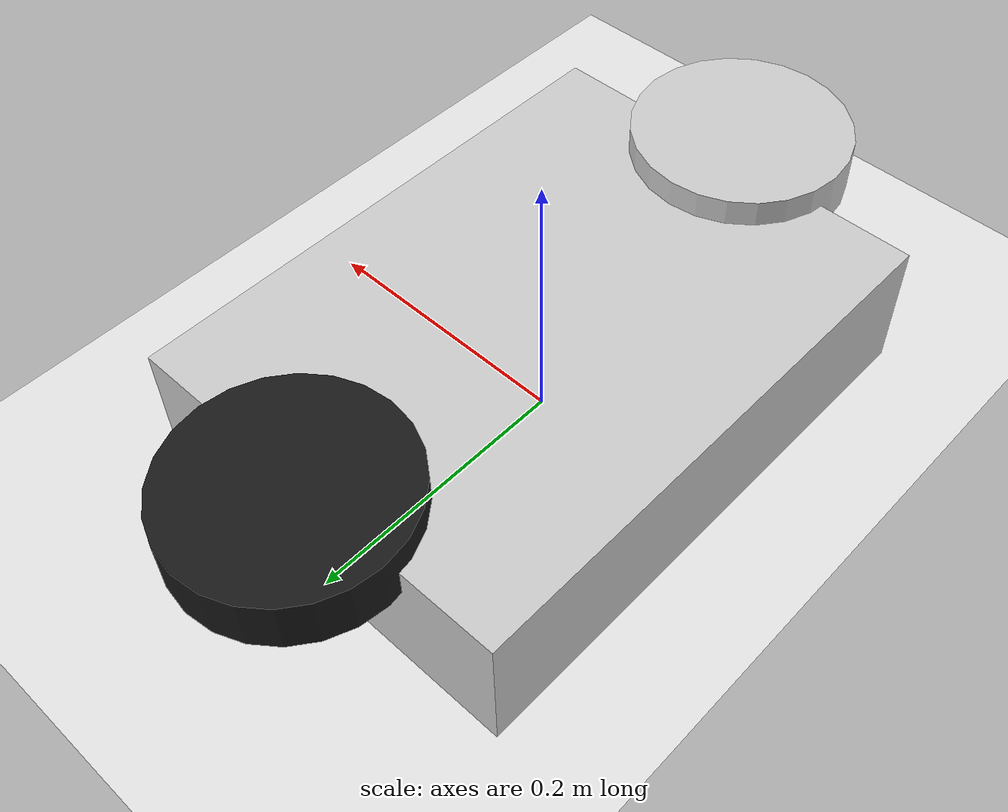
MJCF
<mujoco model="mobile_robot">
  <compiler inertiafromgeom="true" angle="radian"/>
  <option gravity="0 0 -9.81" timestep="0.002"/>

  <size nuserdata="0"/>

  <default>
    <geom rgba="0.8 0.8 0.8 1" condim="3" friction="1 0.1 0.1"/>
    <joint armature="0.0" damping="0.0" stiffness="0.0"/>
  </default>

  <asset>
    <texture type="skybox" builtin="gradient" rgb1=".4 .6 .8" rgb2="0 0 0" width="256" height="256"/>
    <material name="ground" rgba=".9 .9 .9 1"/>
    <material name="chassis" rgba=".2 .2 .2 1"/>
    <material name="wheel" rgba=".1 .1 .1 1"/>
  </asset>

  <worldbody>
    <!-- 평면 -->
    <geom name="floor" type="plane" size="4 4 0.1" material="ground" rgba="0.9 0.9 0.9 1"/>

    <!-- 베이스: free joint(위치/자세 7자유도) -->
    <body name="base" pos="0 0 0.05">
      <joint name="base_free" type="free"/>
      <geom type="box" size="0.15 0.20 0.05" material="chassis"/>

      <!-- 왼쪽 바퀴 (y축 힌지 회전) -->
      <body name="left_wheel" pos="0  0.21 0.05">
        <joint name="left_wheel_joint" type="hinge" axis="0 1 0" limited="false"/>
        <geom type="cylinder" size="0.08 0.02" material="wheel" rgba="0.1 0.1 0.1 1"/>
      </body>

      <!-- 오른쪽 바퀴 -->
      <body name="right_wheel" pos="0 -0.21 0.05">
        <joint name="right_wheel_joint" type="hinge" axis="0 1 0" limited="false"/>
        <geom type="cylinder" size="0.08 0.02" material="wheel"/>
      </body>
    </body>
  </worldbody>

  <actuator/>
</mujoco>
